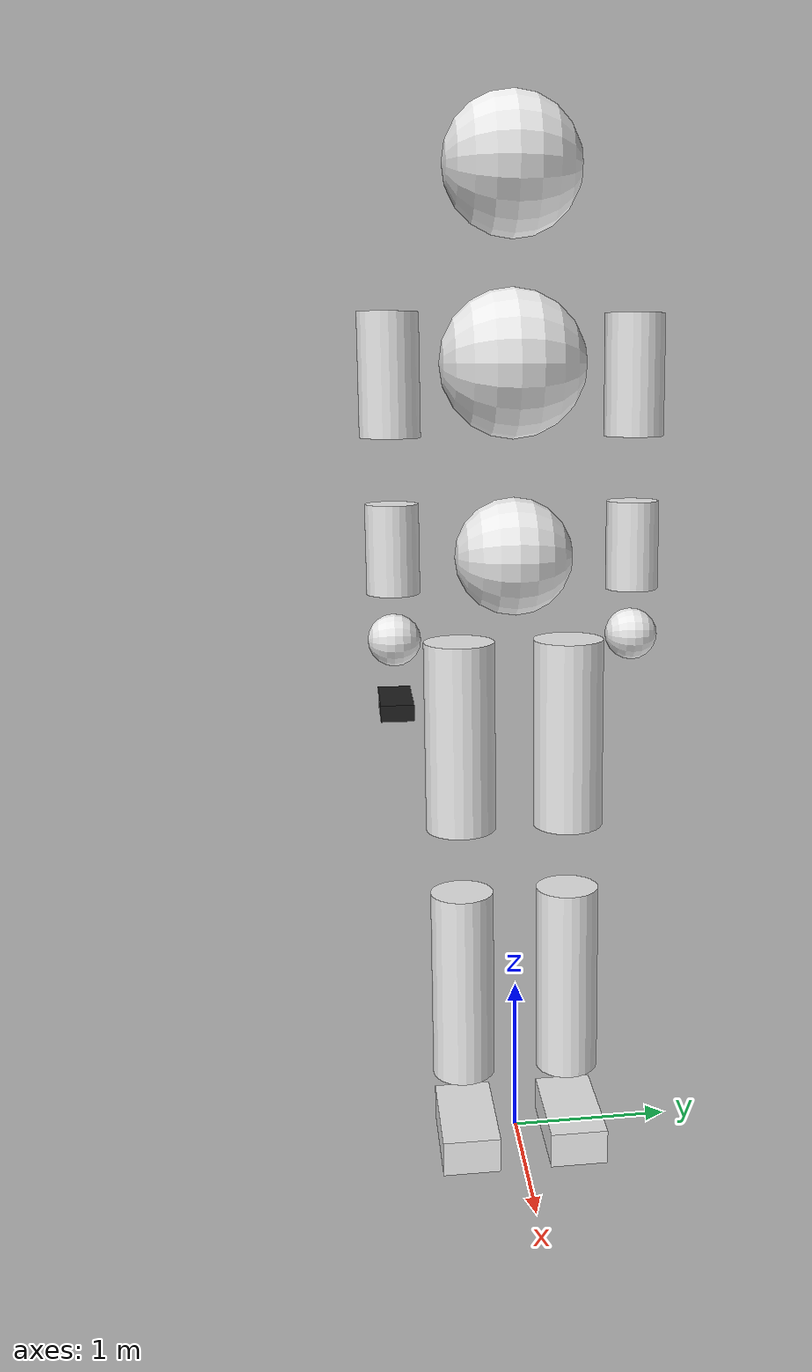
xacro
<?xml version="1.0"?>

<robot name="humanoid_shp" xmlns:xacro="http://www.ros.org/wiki/xacro">

<xacro:macro name="transmission_block" params="joint_name">
  <transmission name="tran1">
	<type>transmission_interface/SimpleTransmission</type>
	<joint name="${joint_name}">
	  <hardwareInterface>hardware_interface/PositionJointInterface</hardwareInterface>
	</joint>
	<actuator name="motor1">
	  <hardwareInterface>PositionJointInterface</hardwareInterface>
	    <mechanicalReduction>1</mechanicalReduction>
	</actuator>
  </transmission>
</xacro:macro>
	<link name="base" >
		<inertial>
			 <origin rpy="0 0 0" xyz="0 0 0"/>
			 <mass value="0.0001"/>
			<inertia ixx="0.0001" ixy="0" ixz="0" iyy="0.0001" iyz="0" izz="0.0001" />
		</inertial>
	</link>
	<link name="root" >
		<inertial>
	 		 <origin rpy = "0 0 0" xyz = "0.000000 0.280000 0.000000" />
			 <mass value = "6.000000" />
			<inertia ixx = "0.1" ixy = "0" ixz = "0" iyy = "0.1" iyz = "0" izz = "0.1" />
		</inertial>
		<collision>
			<origin rpy = "0 0 0" xyz = "0.000000 0.280000 0.000000" />
			<geometry>
				<sphere radius = "0.360000" />
			</geometry>
		</collision>
		<visual>
			<origin rpy = "0 0 0" xyz = "0.000000 0.280000 0.000000" />
			<geometry>
				<sphere radius = "0.360000" />
			</geometry>
		</visual>
	</link>
	<joint name="root" type="fixed" >
		<parent link = "base" />
		<child link="root" />
		<!--origin rpy = "1.57 0 0" xyz = "0.000000 0.000000 3.500000" -->
		<origin rpy = "1.57079632679 0 0" xyz = "0.000000 0.000000 3.525" />
	</joint>
	<link name="chest" >
		<inertial>
			 <origin rpy = "0 0 0" xyz = "0.000000 0.480000 0.000000" />
			 <mass value = "14.000000" />
			<inertia ixx = "0.1" ixy = "0" ixz = "0" iyy = "0.1" iyz = "0" izz = "0.1" />
		</inertial>
		<collision>
			<origin rpy = "0 0 0" xyz = "0.000000 0.480000 0.000000" />
			<geometry>
				<sphere radius = "0.440000" />
			</geometry>
		</collision>
		<visual>
			<origin rpy = "0 0 0" xyz = "0.000000 0.480000 0.000000" />
			<geometry>
				<sphere radius = "0.440000" />
			</geometry>
		</visual>
	</link>
	<joint name="chest" type="continuous" >
		<parent link="root" />
		<child link="chest" />
		<origin rpy = "0 0 0" xyz = "0.000000 0.944604 0.000000" />
		<axis xyz = "0.000000 0.000000 1.000000" />
	</joint>
	<link name="neck" >
		<inertial>
			 <origin rpy = "0 0 0" xyz = "0.000000 0.700000 0.000000" />
			 <mass value = "2.000000" />
			<inertia ixx = "0.1" ixy = "0" ixz = "0" iyy = "0.1" iyz = "0" izz = "0.1" />
		</inertial>
		<collision>
			<origin rpy = "0 0 0" xyz = "0.000000 0.700000 0.000000" />
			<geometry>
				<sphere radius = "0.410000" />
			</geometry>
		</collision>
		<visual>
			<origin rpy = "0 0 0" xyz = "0.000000 0.700000 0.000000" />
			<geometry>
				<sphere radius = "0.410000" />
			</geometry>
		</visual>
	</link>
	<joint name="neck" type="continuous" >
		<parent link="chest" />
		<child link="neck" />
		<origin rpy = "0 0 0" xyz = "0.000000 0.895576 0.000000" />
		<axis xyz = "1.000000 1.000000 0.000000" />
	</joint>
	<link name="right_hip" >
		<inertial>
			 <origin rpy = "0 0 0" xyz = "0.000000 -0.840000 0.000000" />
			 <mass value = "4.500000" />
			<inertia ixx = "0.1" ixy = "0" ixz = "0" iyy = "0.1" iyz = "0" izz = "0.1" />
		</inertial>
		<collision>
			<origin rpy = "-1.570796 0 0" xyz = "0.000000 -0.840000 0.000000" />
			<geometry>
				<cylinder length="1.200000" radius="0.220000"/>
			</geometry>
		</collision>
		<visual>
			<origin rpy = "-1.570796 0 0" xyz = "0.000000 -0.840000 0.000000" />
			<geometry>
				<cylinder length="1.200000" radius="0.220000"/>
			</geometry>
		</visual>
	</link>
	<joint name="right_hip" type="continuous" >
		<parent link="root" />
		<child link="right_hip" />
		<origin rpy = "0 0 0" xyz = "0.000000 0.000000 0.339548" />
		<axis xyz = "0.000000 0.000000 1.000000" />
	</joint>
	<link name="right_knee" >
		<inertial>
			 <origin rpy = "0 0 0" xyz = "0.000000 -0.800000 0.000000" />
			 <mass value = "3.000000" />
			<inertia ixx = "0.1" ixy = "0" ixz = "0" iyy = "0.1" iyz = "0" izz = "0.1" />
		</inertial>
		<collision>
			<origin rpy = "-1.570796 0 0" xyz = "0.000000 -0.800000 0.000000" />
			<geometry>
				<cylinder length="1.240000" radius="0.200000"/>
			</geometry>
		</collision>
		<visual>
			<origin rpy = "-1.570796 0 0" xyz = "0.000000 -0.800000 0.000000" />
			<geometry>
				<cylinder length="1.240000" radius="0.200000"/>
			</geometry>
		</visual>
	</link>
	<joint name="right_knee" type="revolute" >
		<parent link="right_hip" />
		<child link="right_knee" />
		<limit effort="1000.0" lower="-3.14" upper="0." velocity="0.5"/>
		<origin rpy = "0 0 0" xyz = "0.000000 -1.686184 0.000000" />
		<axis xyz = "0.000000 0.000000 1.000000" />
	</joint>
	<link name="right_ankle" >
		<inertial>
			 <origin rpy = "0 0 0" xyz = "0.180000 -0.090000 0.000000" />
			 <mass value = "1.000000" />
			<inertia ixx = "0.1" ixy = "0" ixz = "0" iyy = "0.1" iyz = "0" izz = "0.1" />
		</inertial>
		<collision>
			<origin rpy = "0 0 0" xyz = "0.180000 -0.090000 0.000000" />
			<geometry>
				<box size="0.708000 0.220000 0.360000" />
			</geometry>
		</collision>
		<visual>
			<origin rpy = "0 0 0" xyz = "0.180000 -0.090000 0.000000" />
			<geometry>
				<box size="0.708000 0.220000 0.360000" />
			</geometry>
		</visual>
	</link>
	<joint name="right_ankle" type="continuous" >
		<parent link="right_knee" />
		<child link="right_ankle" />
		<origin rpy = "0 0 0" xyz = "0.000000 -1.639480 0.000000" />
		<axis xyz = "0.000000 0.000000 1.000000" />
	</joint>
	<link name="right_shoulder" >
		<inertial>
			 <origin rpy = "0 0 0" xyz = "0.000000 -0.560000 0.000000" />
			 <mass value = "1.500000" />
			<inertia ixx = "0.1" ixy = "0" ixz = "0" iyy = "0.1" iyz = "0" izz = "0.1" />
		</inertial>
		<collision>
			<origin rpy = "-1.570796 0 0" xyz = "0.000000 -0.560000 0.000000" />
			<geometry>
				<cylinder length="0.720000" radius="0.180000"/>
			</geometry>
		</collision>
		<visual>
			<origin rpy = "-1.570796 0 0" xyz = "0.000000 -0.560000 0.000000" />
			<geometry>
				<cylinder length="0.720000" radius="0.180000"/>
			</geometry>
		</visual>
	</link>
	<joint name="right_shoulder" type="continuous">
		<parent link="chest" />
		<child link="right_shoulder" />
		<!--origin rpy = "0 0 0" xyz = "-0.096200 0.974000 0.732440" -->
		<origin rpy = "0 0 0" xyz = "0 0.974000 0.732440" />
		<axis xyz = "0.000000 0.000000 1.000000" />
		<!--axis xyz = "1.000000 0.000000 0.000000" -->
	</joint>
	<link name="right_elbow" >
		<inertial>
			 <origin rpy = "0 0 0" xyz = "0.000000 -0.480000 0.000000" />
			 <mass value = "1.000000" />
			<inertia ixx = "0.1" ixy = "0" ixz = "0" iyy = "0.1" iyz = "0" izz = "0.1" />
		</inertial>
		<collision>
			<origin rpy = "-1.570796 0 0" xyz = "0.000000 -0.480000 0.000000" />
			<geometry>
				<cylinder length="0.540000" radius="0.160000"/>
			</geometry>
		</collision>
		<visual>
			<origin rpy = "-1.570796 0 0" xyz = "0.000000 -0.480000 0.000000" />
			<geometry>
				<cylinder length="0.540000" radius="0.160000"/>
			</geometry>
		</visual>
	</link>
	<joint name="right_elbow" type="revolute" >
		<parent link="right_shoulder" />
		<child link="right_elbow" />
		<limit effort="1000.0" lower="0" upper="3.14" velocity="0.5"/>
		<origin rpy = "0 0 0" xyz = "0.000000 -1.099152 0.000000" />
		<axis xyz = "0.000000 0.000000 1.000000" />
	</joint>
	<link name="right_wrist" >
		<inertial>
			 <origin rpy = "0 0 0" xyz = "0.000000 0.000000 0.000000" />
			 <mass value = "0.500000" />
			<inertia ixx = "0.1" ixy = "0" ixz = "0" iyy = "0.1" iyz = "0" izz = "0.1" />
		</inertial>
		<collision>
			<origin rpy = "0 0 0" xyz = "0.000000 0.000000 0.000000" />
			<geometry>
				<sphere radius = "0.160000" />
			</geometry>
		</collision>
		<visual>
			<origin rpy = "0 0 0" xyz = "0.000000 0.000000 0.000000" />
			<geometry>
				<sphere radius = "0.160000" />
			</geometry>
		</visual>
	</link>
	<joint name="right_wrist" type="fixed" >
		<parent link="right_elbow" />
		<child link="right_wrist" />
		<origin rpy = "0 0 0" xyz = "0.000000 -1.035788 0.000000" />
	</joint>
	<link name="left_hip" >
		<inertial>
			 <origin rpy = "0 0 0" xyz = "0.000000 -0.840000 0.000000" />
			 <mass value = "4.500000" />
			<inertia ixx = "0.1" ixy = "0" ixz = "0" iyy = "0.1" iyz = "0" izz = "0.1" />
		</inertial>
		<collision>
			<origin rpy = "-1.570796 0 0" xyz = "0.000000 -0.840000 0.000000" />
			<geometry>
				<cylinder length="1.200000" radius="0.220000"/>
			</geometry>
		</collision>
		<visual>
			<origin rpy = "-1.570796 0 0" xyz = "0.000000 -0.840000 0.000000" />
			<geometry>
				<cylinder length="1.200000" radius="0.220000"/>
			</geometry>
		</visual>
	</link>
	<joint name="left_hip" type="continuous" >
		<parent link="root" />
		<child link="left_hip" />
		<origin rpy = "0 0 0" xyz = "0.000000 0.000000 -0.339548" />
		<axis xyz = "0.000000 0.000000 1.000000" />
	</joint>
	<link name="left_knee" >
		<inertial>
			 <origin rpy = "0 0 0" xyz = "0.000000 -0.800000 0.000000" />
			 <mass value = "3.000000" />
			<inertia ixx = "0.1" ixy = "0" ixz = "0" iyy = "0.1" iyz = "0" izz = "0.1" />
		</inertial>
		<collision>
			<origin rpy = "-1.570796 0 0" xyz = "0.000000 -0.800000 0.000000" />
			<geometry>
				<cylinder length="1.240000" radius="0.200000"/>
			</geometry>
		</collision>
		<visual>
			<origin rpy = "-1.570796 0 0" xyz = "0.000000 -0.800000 0.000000" />
			<geometry>
				<cylinder length="1.240000" radius="0.200000"/>
			</geometry>
		</visual>
	</link>
	<joint name="left_knee" type="revolute" >
		<parent link="left_hip" />
		<child link="left_knee" />
		<limit effort="1000.0" lower="-3.14" upper="0." velocity="0.5"/>
		<origin rpy = "0 0 0" xyz = "0.000000 -1.686184 0.000000" />
		<axis xyz = "0.000000 0.000000 1.000000" />
	</joint>
	<link name="left_ankle" >
		<inertial>
			 <origin rpy = "0 0 0" xyz = "0.180000 -0.090000 0.000000" />
			 <mass value = "1.000000" />
			<inertia ixx = "0.1" ixy = "0" ixz = "0" iyy = "0.1" iyz = "0" izz = "0.1" />
		</inertial>
		<collision>
			<origin rpy = "0 0 0" xyz = "0.180000 -0.090000 0.000000" />
			<geometry>
				<box size="0.708000 0.220000 0.360000" />
			</geometry>
		</collision>
		<visual>
			<origin rpy = "0 0 0" xyz = "0.180000 -0.090000 0.000000" />
			<geometry>
				<box size="0.708000 0.220000 0.360000" />
			</geometry>
		</visual>
	</link>
	<joint name="left_ankle" type="continuous" >
		<parent link="left_knee" />
		<child link="left_ankle" />
		<origin rpy = "0 0 0" xyz = "0.000000 -1.639480 0.000000" />
		<axis xyz = "0.000000 0.000000 1.000000" />
	</joint>
	<link name="left_shoulder" >
		<inertial>
			 <origin rpy = "0 0 0" xyz = "0.000000 -0.560000 0.000000" />
			 <mass value = "1.500000" />
			<inertia ixx = "0.1" ixy = "0" ixz = "0" iyy = "0.1" iyz = "0" izz = "0.1" />
		</inertial>
		<collision>
			<origin rpy = "-1.570796 0 0" xyz = "0.000000 -0.560000 0.000000" />
			<geometry>
				<cylinder length="0.720000" radius="0.180000"/>
			</geometry>
		</collision>
		<visual>
			<origin rpy = "-1.570796 0 0" xyz = "0.000000 -0.560000 0.000000" />
			<geometry>
				<cylinder length="0.720000" radius="0.180000"/>
			</geometry>
		</visual>
	</link>
	<joint name="left_shoulder" type="continuous" >
		<parent link="chest" />
		<child link="left_shoulder" />
		<!--origin rpy = "0 0 0" xyz = "-0.096200 0.974000 -0.732440" -->
		<origin rpy = "0 0 0" xyz = "0 0.974000 -0.732440" />
		<axis xyz = "0.000000 0.000000 1.000000" />
		<!--axis xyz = "1.000000 0.000000 0.000000" -->
	</joint>
	<link name="left_elbow" >
		<inertial>
			 <origin rpy = "0 0 0" xyz = "0.000000 -0.480000 0.000000" />
			 <mass value = "1.000000" />
			<inertia ixx = "0.1" ixy = "0" ixz = "0" iyy = "0.1" iyz = "0" izz = "0.1" />
		</inertial>
		<collision>
			<origin rpy = "-1.570796 0 0" xyz = "0.000000 -0.480000 0.000000" />
			<geometry>
				<cylinder length="0.540000" radius="0.160000"/>
			</geometry>
		</collision>
		<visual>
			<origin rpy = "-1.570796 0 0" xyz = "0.000000 -0.480000 0.000000" />
			<geometry>
				<cylinder length="0.540000" radius="0.160000"/>
			</geometry>
		</visual>
	</link>
	<joint name="left_elbow" type="revolute" >
		<parent link="left_shoulder" />
		<child link="left_elbow" />
		<limit effort="1000.0" lower="0" upper="3.14" velocity="0.5"/>
		<origin rpy = "0 0 0" xyz = "0.000000 -1.099152 0.000000" />
		<axis xyz = "0.000000 0.000000 1.000000" />
	</joint>
	<link name="left_wrist" >
		<inertial>
			 <origin rpy = "0 0 0" xyz = "0.000000 0.000000 0.000000" />
			 <mass value = "0.500000" />
			<inertia ixx = "0.1" ixy = "0" ixz = "0" iyy = "0.1" iyz = "0" izz = "0.1" />
		</inertial>
		<collision>
			<origin rpy = "0 0 0" xyz = "0.000000 0.000000 0.000000" />
			<geometry>
				<sphere radius = "0.160000" />
			</geometry>
		</collision>
		<visual>
			<origin rpy = "0 0 0" xyz = "0.000000 0.000000 0.000000" />
			<geometry>
				<sphere radius = "0.160000" />
			</geometry>
		</visual>
	</link>
	<joint name="left_wrist" type="fixed" >
		<parent link="left_elbow" />
		<child link="left_wrist" />
		<origin rpy = "0 0 0" xyz = "0.000000 -1.035788 0.000000" />
	</joint>
	<link name="imu_link">
	  <visual>
	    <origin rpy = "0 0 0" xyz = "0.000000 0.000000 0.000000" />
		<geometry>
		  <box size="0.5 0.2 0.1"/>
		</geometry>
	  </visual>
	</link>
	<joint name="imu_wrist" type="fixed">
	  <origin rpy = "-1.57079632679 0 0" xyz = "0.000000 -0.400000 0.000000" />
	  <!--origin rpy = "0 0 0" xyz = "0.000000 -0.400000 0.000000" /-->
	  <!--origin rpy = "0 0 -1.57079632679" xyz = "0.000000 -0.400000 0.000000" /-->
	  <parent link="right_wrist"/>
	  <child link="imu_link"/>
	</joint>
	<link name="world"/>
	<joint name="fixed_joint" type="fixed">
	  <parent link="world"/>
	  <child link="base"/>
	</joint>

	<gazebo reference="base">
	  <material>Gazebo/White</material>
	</gazebo>
	<gazebo reference="chest">
	  <material>Gazebo/White</material>
	</gazebo>
	<gazebo reference="left_ankle">
	  <material>Gazebo/White</material>
	</gazebo>
	<gazebo reference="left_elbow">
	  <material>Gazebo/White</material>
	</gazebo>
	<gazebo reference="left_hip">
	  <material>Gazebo/White</material>
	</gazebo>
	<gazebo reference="left_knee">
	  <material>Gazebo/White</material>
	</gazebo>
	<gazebo reference="left_shoulder">
	  <material>Gazebo/White</material>
	</gazebo>
	<gazebo reference="left_wrist">
	  <material>Gazebo/White</material>
	</gazebo>
	<gazebo reference="neck">
	  <material>Gazebo/White</material>
	</gazebo>
	<gazebo reference="right_ankle">
	  <material>Gazebo/White</material>
	</gazebo>
	<gazebo reference="right_elbow">
	  <material>Gazebo/White</material>
	</gazebo>
	<gazebo reference="right_hip">
	  <material>Gazebo/White</material>
	</gazebo>
	<gazebo reference="right_wrist">
	  <material>Gazebo/White</material>
	</gazebo>
	<gazebo reference="right_knee">
	  <material>Gazebo/White</material>
	</gazebo>
	<gazebo reference="right_shoulder">
	  <material>Gazebo/White</material>
	</gazebo>
	<gazebo reference="right_wrist">
	  <material>Gazebo/White</material>
	</gazebo>
	<gazebo reference="root">
	  <material>Gazebo/White</material>
	</gazebo>
	<gazebo reference="imu_link">
	  <material>Gazebo/Black</material>
	</gazebo>

	<xacro:transmission_block joint_name="chest"/>
	<xacro:transmission_block joint_name="left_ankle"/>
	<xacro:transmission_block joint_name="left_elbow"/>
	<xacro:transmission_block joint_name="left_hip"/>
	<xacro:transmission_block joint_name="left_knee"/>
	<xacro:transmission_block joint_name="left_shoulder"/>
	<xacro:transmission_block joint_name="neck"/>
	<xacro:transmission_block joint_name="right_ankle"/>
	<xacro:transmission_block joint_name="right_elbow"/>
	<xacro:transmission_block joint_name="right_hip"/>
	<xacro:transmission_block joint_name="right_knee"/>
	<xacro:transmission_block joint_name="right_shoulder"/>

	<gazebo>
	  <plugin name="gazebo_ros_control" filename="libgazebo_ros_control.so">
		<robotNamespace>/humanoid_shp</robotNamespace>
        <robotSimType>gazebo_ros_control/DefaultRobotHWSim</robotSimType>
        <legacyModeNS>true</legacyModeNS>
	  </plugin>
	</gazebo>
	<gazebo reference="left_ankle">
	  <surface>
		<friction>
		  <ode>
	        <mu>10000</mu>
			<fdir1>0 0 0</fdir1>
		  </ode>
		</friction>
	  </surface>
	</gazebo>
	<gazebo reference="right_ankle">
	  <surface>
		<friction>
		  <ode>
	        <mu>10000</mu>
			<fdir1>0 0 0</fdir1>
		  </ode>
		</friction>
	  </surface>
	</gazebo>

	<!--gazebo reference="right_wrist"-->
	<gazebo reference="imu_link">
	  <gravity>true</gravity>
	  <sensor name="imu_sensor" type="imu">
		<pose>0 0 0 0 0 0</pose>
		<always_on>true</always_on>
		<update_rate>10</update_rate>
		<visualize>true</visualize>
		<topic>__default_topic__</topic>
		<plugin filename="libgazebo_ros_imu_sensor.so" name="imu_plugin">
		  <topicName>imu</topicName>
		  <bodyName>imu_link</bodyName>
		  <updateRateHZ>10.0</updateRateHZ>
		  <gaussianNoise>0.0</gaussianNoise>
		  <xyzOffset>0 0 0</xyzOffset>
		  <rpyOffset>0 0 0</rpyOffset>
		  <frameName>imu_link</frameName>
		</plugin>
	  </sensor>
	</gazebo>
</robot>
